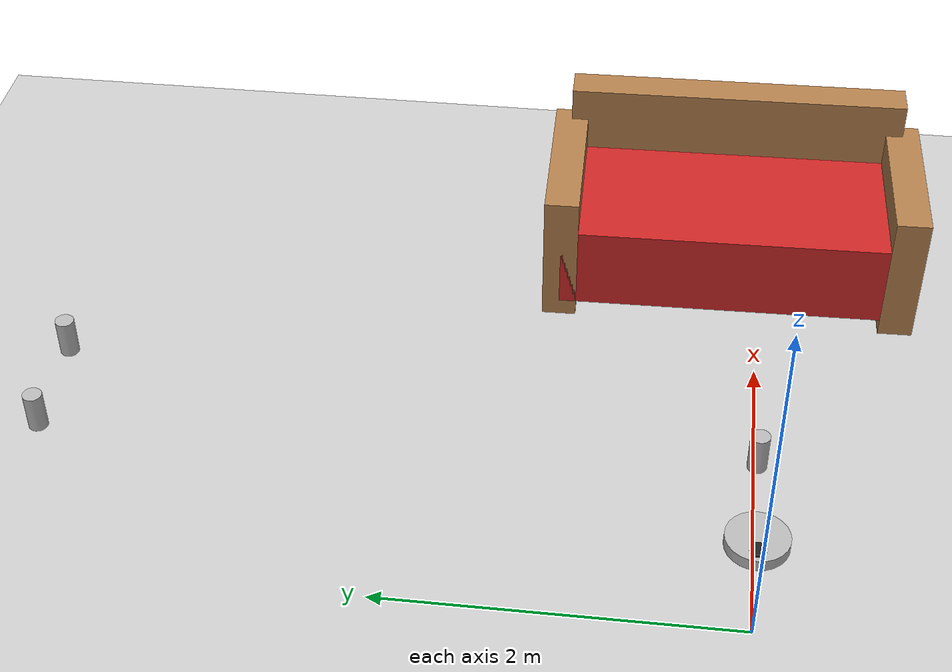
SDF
<sdf version="1.6">
 <world name="default">
  <model name="ground_plane">
   <static>1</static>
   <link name="link">
    <collision name="collision">
     <geometry><plane><normal>0 0 1</normal><size>100 100</size></plane></geometry>
     <surface><friction><ode><mu>100</mu><mu2>50</mu2></ode></friction></surface>
    </collision>
    <visual name="visual">
     <cast_shadows>0</cast_shadows>
     <geometry><plane><normal>0 0 1</normal><size>100 100</size></plane></geometry>
     <material>
      <script><uri>file://media/materials/scripts/gazebo.material</uri><name>Gazebo/Grey</name></script>
     </material>
    </visual>
   </link>
  </model>
  <model name="beer_clone">
   <link name="link">
    <pose>0 0 0.115 0 -0 0</pose>
    <inertial>
     <mass>0.39</mass>
     <inertia><ixx>0.00058</ixx><ixy>0</ixy><ixz>0</ixz><iyy>0.00058</iyy><iyz>0</iyz><izz>0.00019</izz></inertia>
    </inertial>
    <collision name="collision">
     <geometry><cylinder><radius>0.055</radius><length>0.23</length></cylinder></geometry>
    </collision>
    <visual name="visual">
     <geometry><cylinder><radius>0.055</radius><length>0.23</length></cylinder></geometry>
     <material>
      <script>
       <uri>model://beer/materials/scripts</uri>
       <uri>model://beer/materials/textures</uri>
       <name>Beer/Diffuse</name>
      </script>
     </material>
    </visual>
   </link>
   <pose>0.999981 0.0001 0.199992 3.1e-05 -3e-06 0.003682</pose>
  </model>
  <model name="beer_clone_1">
   <link name="link">
    <pose>0 0 0.115 0 -0 0</pose>
    <inertial>
     <mass>0.39</mass>
     <inertia><ixx>0.00058</ixx><ixy>0</ixy><ixz>0</ixz><iyy>0.00058</iyy><iyz>0</iyz><izz>0.00019</izz></inertia>
    </inertial>
    <collision name="collision">
     <geometry><cylinder><radius>0.055</radius><length>0.23</length></cylinder></geometry>
    </collision>
    <visual name="visual">
     <geometry><cylinder><radius>0.055</radius><length>0.23</length></cylinder></geometry>
     <material>
      <script>
       <uri>model://beer/materials/scripts</uri>
       <uri>model://beer/materials/textures</uri>
       <name>Beer/Diffuse</name>
      </script>
     </material>
    </visual>
   </link>
   <pose>0.858582 3.99802 0.199996 2.6e-05 0.000105 0.000698</pose>
  </model>
  <model name="beer_clone_2">
   <link name="link">
    <pose>0 0 0.115 0 -0 0</pose>
    <inertial>
     <mass>0.39</mass>
     <inertia><ixx>0.00058</ixx><ixy>0</ixy><ixz>0</ixz><iyy>0.00058</iyy><iyz>0</iyz><izz>0.00019</izz></inertia>
    </inertial>
    <collision name="collision">
     <geometry><cylinder><radius>0.055</radius><length>0.23</length></cylinder></geometry>
    </collision>
    <visual name="visual">
     <geometry><cylinder><radius>0.055</radius><length>0.23</length></cylinder></geometry>
     <material>
      <script>
       <uri>model://beer/materials/scripts</uri>
       <uri>model://beer/materials/textures</uri>
       <name>Beer/Diffuse</name>
      </script>
     </material>
    </visual>
   </link>
   <pose>1.49167 4.01205 0.200006 2.8e-05 0.000107 -5e-05</pose>
  </model>
  <model name="safa">
   <link name="link_0">
    <pose>0.125 0 -0.0625 0 -0 0</pose>
    <inertial>
     <mass>1</mass>
     <inertia>
      <ixx>0.166667</ixx>
      <ixy>0</ixy>
      <ixz>0</ixz>
      <iyy>0.166667</iyy>
      <iyz>0</iyz>
      <izz>0.166667</izz>
     </inertia>
    </inertial>
    <visual name="visual">
     <geometry><box><size>1 2 0.5</size></box></geometry>
     <material>
      <lighting>1</lighting>
      <script><uri>file://media/materials/scripts/gazebo.material</uri><name>Gazebo/Red</name></script>
      <ambient>0.7 0 0 1</ambient>
      <diffuse>0.7 0 0 1</diffuse>
      <specular>0.7 0 0 1</specular>
      <emissive>0 0 0 1</emissive>
      <shader type="vertex"><normal_map>__default__</normal_map></shader>
     </material>
    </visual>
    <collision name="collision">
     <geometry><box><size>1 2 0.5</size></box></geometry>
     <surface>
      <friction>
       <ode><mu>1</mu><mu2>1</mu2><fdir1>0 0 0</fdir1><slip1>0</slip1><slip2>0</slip2></ode>
       <torsional>
        <coefficient>1</coefficient>
        <patch_radius>0</patch_radius>
        <surface_radius>0</surface_radius>
        <use_patch_radius>1</use_patch_radius>
        <ode><slip>0</slip></ode>
       </torsional>
      </friction>
      <bounce><restitution_coefficient>0</restitution_coefficient><threshold>1e+06</threshold></bounce>
      <contact>
       <collide_without_contact>0</collide_without_contact>
       <collide_without_contact_bitmask>1</collide_without_contact_bitmask>
       <collide_bitmask>1</collide_bitmask>
       <ode>
        <soft_cfm>0</soft_cfm>
        <soft_erp>0.2</soft_erp>
        <kp>1e+13</kp>
        <kd>1</kd>
        <max_vel>0.01</max_vel>
        <min_depth>0</min_depth>
       </ode>
       <bullet>
        <split_impulse>1</split_impulse>
        <split_impulse_penetration_threshold>-0.01</split_impulse_penetration_threshold>
        <soft_cfm>0</soft_cfm>
        <soft_erp>0.2</soft_erp>
        <kp>1e+13</kp>
        <kd>1</kd>
       </bullet>
      </contact>
     </surface>
    </collision>
   </link>
   <link name="link_1">
    <pose>0.125 -1 -0.0125 0 -0 0</pose>
    <inertial>
     <mass>1</mass>
     <inertia>
      <ixx>0.166667</ixx>
      <ixy>0</ixy>
      <ixz>0</ixz>
      <iyy>0.166667</iyy>
      <iyz>0</iyz>
      <izz>0.166667</izz>
     </inertia>
    </inertial>
    <visual name="visual">
     <geometry><box><size>1 0.2 0.8</size></box></geometry>
     <material>
      <lighting>1</lighting>
      <script><uri>file://media/materials/scripts/gazebo.material</uri><name>Gazebo/Wood</name></script>
      <ambient>0.3 0.3 0.3 1</ambient>
      <diffuse>0.7 0.7 0.7 1</diffuse>
      <specular>0.01 0.01 0.01 1</specular>
      <emissive>0 0 0 1</emissive>
      <shader type="vertex"><normal_map>__default__</normal_map></shader>
     </material>
    </visual>
    <collision name="collision">
     <geometry><box><size>1 0.2 0.8</size></box></geometry>
     <surface>
      <friction>
       <ode><mu>1</mu><mu2>1</mu2><fdir1>0 0 0</fdir1><slip1>0</slip1><slip2>0</slip2></ode>
       <torsional>
        <coefficient>1</coefficient>
        <patch_radius>0</patch_radius>
        <surface_radius>0</surface_radius>
        <use_patch_radius>1</use_patch_radius>
        <ode><slip>0</slip></ode>
       </torsional>
      </friction>
      <bounce><restitution_coefficient>0</restitution_coefficient><threshold>1e+06</threshold></bounce>
      <contact>
       <collide_without_contact>0</collide_without_contact>
       <collide_without_contact_bitmask>1</collide_without_contact_bitmask>
       <collide_bitmask>1</collide_bitmask>
       <ode>
        <soft_cfm>0</soft_cfm>
        <soft_erp>0.2</soft_erp>
        <kp>1e+13</kp>
        <kd>1</kd>
        <max_vel>0.01</max_vel>
        <min_depth>0</min_depth>
       </ode>
       <bullet>
        <split_impulse>1</split_impulse>
        <split_impulse_penetration_threshold>-0.01</split_impulse_penetration_threshold>
        <soft_cfm>0</soft_cfm>
        <soft_erp>0.2</soft_erp>
        <kp>1e+13</kp>
        <kd>1</kd>
       </bullet>
      </contact>
     </surface>
    </collision>
   </link>
   <link name="link_1_clone">
    <pose>0.125 1 -0.0125 0 -0 0</pose>
    <inertial>
     <mass>1</mass>
     <inertia>
      <ixx>0.166667</ixx>
      <ixy>0</ixy>
      <ixz>0</ixz>
      <iyy>0.166667</iyy>
      <iyz>0</iyz>
      <izz>0.166667</izz>
     </inertia>
    </inertial>
    <visual name="visual">
     <geometry><box><size>1 0.2 0.8</size></box></geometry>
     <material>
      <lighting>1</lighting>
      <script><uri>file://media/materials/scripts/gazebo.material</uri><name>Gazebo/Wood</name></script>
      <ambient>0.3 0.3 0.3 1</ambient>
      <diffuse>0.7 0.7 0.7 1</diffuse>
      <specular>0.01 0.01 0.01 1</specular>
      <emissive>0 0 0 1</emissive>
      <shader type="vertex"><normal_map>__default__</normal_map></shader>
     </material>
    </visual>
    <collision name="collision">
     <geometry><box><size>1 0.2 0.8</size></box></geometry>
     <surface>
      <friction>
       <ode><mu>1</mu><mu2>1</mu2><fdir1>0 0 0</fdir1><slip1>0</slip1><slip2>0</slip2></ode>
       <torsional>
        <coefficient>1</coefficient>
        <patch_radius>0</patch_radius>
        <surface_radius>0</surface_radius>
        <use_patch_radius>1</use_patch_radius>
        <ode><slip>0</slip></ode>
       </torsional>
      </friction>
      <bounce><restitution_coefficient>0</restitution_coefficient><threshold>1e+06</threshold></bounce>
      <contact>
       <collide_without_contact>0</collide_without_contact>
       <collide_without_contact_bitmask>1</collide_without_contact_bitmask>
       <collide_bitmask>1</collide_bitmask>
       <ode>
        <soft_cfm>0</soft_cfm>
        <soft_erp>0.2</soft_erp>
        <kp>1e+13</kp>
        <kd>1</kd>
        <max_vel>0.01</max_vel>
        <min_depth>0</min_depth>
       </ode>
       <bullet>
        <split_impulse>1</split_impulse>
        <split_impulse_penetration_threshold>-0.01</split_impulse_penetration_threshold>
        <soft_cfm>0</soft_cfm>
        <soft_erp>0.2</soft_erp>
        <kp>1e+13</kp>
        <kd>1</kd>
       </bullet>
      </contact>
     </surface>
    </collision>
   </link>
   <link name="link_1_clone_0">
    <pose>-0.375 0 0.0875 0 -0 0</pose>
    <inertial>
     <mass>1</mass>
     <inertia>
      <ixx>0.166667</ixx>
      <ixy>0</ixy>
      <ixz>0</ixz>
      <iyy>0.166667</iyy>
      <iyz>0</iyz>
      <izz>0.166667</izz>
     </inertia>
    </inertial>
    <visual name="visual">
     <geometry><box><size>0.2 2 1</size></box></geometry>
     <material>
      <lighting>1</lighting>
      <script><uri>file://media/materials/scripts/gazebo.material</uri><name>Gazebo/Wood</name></script>
      <ambient>0.3 0.3 0.3 1</ambient>
      <diffuse>0.7 0.7 0.7 1</diffuse>
      <specular>0.01 0.01 0.01 1</specular>
      <emissive>0 0 0 1</emissive>
      <shader type="vertex"><normal_map>__default__</normal_map></shader>
     </material>
    </visual>
    <collision name="collision">
     <geometry><box><size>0.2 2 1</size></box></geometry>
     <surface>
      <friction>
       <ode><mu>1</mu><mu2>1</mu2><fdir1>0 0 0</fdir1><slip1>0</slip1><slip2>0</slip2></ode>
       <torsional>
        <coefficient>1</coefficient>
        <patch_radius>0</patch_radius>
        <surface_radius>0</surface_radius>
        <use_patch_radius>1</use_patch_radius>
        <ode><slip>0</slip></ode>
       </torsional>
      </friction>
      <bounce><restitution_coefficient>0</restitution_coefficient><threshold>1e+06</threshold></bounce>
      <contact>
       <collide_without_contact>0</collide_without_contact>
       <collide_without_contact_bitmask>1</collide_without_contact_bitmask>
       <collide_bitmask>1</collide_bitmask>
       <ode>
        <soft_cfm>0</soft_cfm>
        <soft_erp>0.2</soft_erp>
        <kp>1e+13</kp>
        <kd>1</kd>
        <max_vel>0.01</max_vel>
        <min_depth>0</min_depth>
       </ode>
       <bullet>
        <split_impulse>1</split_impulse>
        <split_impulse_penetration_threshold>-0.01</split_impulse_penetration_threshold>
        <soft_cfm>0</soft_cfm>
        <soft_erp>0.2</soft_erp>
        <kp>1e+13</kp>
        <kd>1</kd>
       </bullet>
      </contact>
     </surface>
    </collision>
   </link>
   <joint name="link_0_JOINT_0" type="fixed">
    <parent>link_0</parent>
    <child>link_1</child>
    <physics>
     <ode><limit><cfm>0</cfm><erp>0.2</erp></limit><suspension><cfm>0</cfm><erp>0.2</erp></suspension></ode>
    </physics>
   </joint>
   <joint name="link_0_JOINT_1" type="fixed">
    <parent>link_0</parent>
    <child>link_1_clone</child>
    <physics>
     <ode><limit><cfm>0</cfm><erp>0.2</erp></limit><suspension><cfm>0</cfm><erp>0.2</erp></suspension></ode>
    </physics>
   </joint>
   <joint name="link_0_JOINT_2" type="fixed">
    <parent>link_0</parent>
    <child>link_1_clone_0</child>
    <physics>
     <ode><limit><cfm>0</cfm><erp>0.2</erp></limit><suspension><cfm>0</cfm><erp>0.2</erp></suspension></ode>
    </physics>
   </joint>
   <static>0</static>
   <pose>2.81574 0.204135 0.6125 0 0 -3.12306</pose>
  </model>
  <model name="cleanpack">
   <pose>0.4 0 0.2 0 0 0</pose>
   <link name="base">
    <visual name="base_visual">
     <pose>0 0 0.055 0 0 0</pose>
     <geometry><cylinder><radius>0.175</radius><length>0.07</length></cylinder></geometry>
    </visual>
    <collision name="base_collision">
     <pose>0 0 0.055 0 0 0</pose>
     <geometry><cylinder><radius>0.175</radius><length>0.07</length></cylinder></geometry>
    </collision>
    <sensor type="contact" name="bady_contact">
     <always_on>true</always_on>
     <update_rate>20</update_rate>
     <contact><collision>base_collision</collision></contact>
     <plugin name="body_contact_controller" filename="libcleanpack_collider.so">
      <mode>body</mode>
      <collider_radius>0.175</collider_radius>
     </plugin>
    </sensor>
    <visual name="caster_visual">
     <pose>0.1 0 0.02 -1.57 0 0</pose>
     <geometry><sphere><radius>0.02</radius></sphere></geometry>
     <material><script><name>Gazebo/Black</name></script></material>
    </visual>
    <collision name="caster_collision">
     <pose>0.1 0 0.02 -1.57 0 0</pose>
     <geometry><sphere><radius>0.02</radius></sphere></geometry>
     <surface>
      <friction><ode><mu>0.0</mu><mu2>0.0</mu2><fdir1>0 0 0</fdir1><slip1>0</slip1><slip2>0</slip2></ode></friction>
     </surface>
    </collision>
    <visual name="back_caster_visual">
     <pose>-0.1 0 0.02 -1.57 0 0</pose>
     <geometry><sphere><radius>0.018</radius></sphere></geometry>
     <material><script><name>Gazebo/Black</name></script></material>
    </visual>
    <collision name="back_caster_collision">
     <pose>-0.1 0 0.02 -1.57 0 0</pose>
     <geometry><sphere><radius>0.018</radius></sphere></geometry>
     <surface>
      <friction>
       <ode><mu>0.0</mu><mu2>0.0</mu2><fdir1>0 0 0</fdir1><slip1>0.0</slip1><slip2>0.0</slip2></ode>
      </friction>
     </surface>
    </collision>
    <inertial>
     <pose>0.05 0 0.02 0 0 0</pose>
     <mass>0.8</mass>
     <inertia>
      <ixx>0.001</ixx>
      <ixy>0.000</ixy>
      <ixz>0.000</ixz>
      <iyy>0.001</iyy>
      <iyz>0.000</iyz>
      <izz>0.001</izz>
     </inertia>
    </inertial>
   </link>
   <link name="lidar">
    <sensor name="lidar83373" type="ray">
     <ray>
      <scan>
       <horizontal>
        <samples>360</samples>
        <resolution>1</resolution>
        <min_angle>0.0</min_angle>
        <max_angle>-6.28319</max_angle>
       </horizontal>
       <vertical>
        <samples>1</samples>
        <resolution>1</resolution>
        <min_angle>0.0</min_angle>
        <max_angle>1.0</max_angle>
       </vertical>
      </scan>
      <range><min>0.06</min><max>8.0</max><resolution>0.001</resolution></range>
      <noise><type>gaussian</type><mean>0.0</mean><stddev>0.005</stddev></noise>
     </ray>
     <always_on>true</always_on>
     <pose>-0.105 0 0.1 0 0 -1.2217</pose>
     <visualize>true</visualize>
     <update_rate>6</update_rate>
     <plugin name="cleanpack_lidar83373" filename="libcleanpack_lidar.so"/>
    </sensor>
    <gravity>false</gravity>
    <visual name="lidar_visual">
     <pose>-0.105 0 0.095 0 0 0</pose>
     <geometry><cylinder><radius>0.045</radius><length>0.0315</length></cylinder></geometry>
     <material><script><name>Gazebo/Black</name></script></material>
    </visual>
    <collision name="lidar_collision">
     <pose>-0.105 0 0.095 0 0 0</pose>
     <geometry><cylinder><radius>0.045</radius><length>0.0315</length></cylinder></geometry>
    </collision>
    <inertial>
     <mass>0.0001</mass>
     <inertia>
      <ixx>0.001</ixx>
      <ixy>0.000</ixy>
      <ixz>0.000</ixz>
      <iyy>0.001</iyy>
      <iyz>0.000</iyz>
      <izz>0.001</izz>
     </inertia>
    </inertial>
   </link>
   <joint name="lidar_joint" type="fixed">
    <parent>base</parent>
    <child>lidar</child>
    <pose>-0.105 0 0.095 0 0 0</pose>
    <axis><xyz>0 0 0</xyz></axis>
   </joint>
   <link name="left_wheel">
    <inertial>
     <pose>0.0 0.12 0.035 -1.57 0 0</pose>
     <inertia>
      <ixx>0.001</ixx>
      <ixy>0.000</ixy>
      <ixz>0.000</ixz>
      <iyy>0.001</iyy>
      <iyz>0.000</iyz>
      <izz>0.001</izz>
     </inertia>
     <mass>0.1</mass>
    </inertial>
    <collision name="left_wheel_collision">
     <pose>0.0 0.12 0.035 -1.57 0 0</pose>
     <geometry><cylinder><radius>0.035</radius><length>0.018</length></cylinder></geometry>
     <surface>
      <friction>
       <ode><mu>100000.0</mu><mu2>100000.0</mu2><fdir1>0 0 0</fdir1><slip1>0.0</slip1><slip2>0.0</slip2></ode>
      </friction>
     </surface>
    </collision>
    <visual name="left_wheel_visual">
     <pose>0.0 0.12 0.035 -1.57 0 0</pose>
     <geometry><cylinder><radius>0.035</radius><length>0.018</length></cylinder></geometry>
     <material><script><name>Gazebo/Black</name></script></material>
    </visual>
   </link>
   <link name="right_wheel">
    <inertial>
     <pose>0.0 -0.12 0.035 -1.57 0 0</pose>
     <inertia>
      <ixx>0.001</ixx>
      <ixy>0.000</ixy>
      <ixz>0.000</ixz>
      <iyy>0.001</iyy>
      <iyz>0.000</iyz>
      <izz>0.001</izz>
     </inertia>
     <mass>0.1</mass>
    </inertial>
    <collision name="right_wheel_collision">
     <pose>0.0 -0.12 0.035 -1.57 0 0</pose>
     <geometry><cylinder><radius>0.035</radius><length>0.018</length></cylinder></geometry>
     <surface>
      <friction>
       <ode><mu>100000.0</mu><mu2>100000.0</mu2><fdir1>0 0 0</fdir1><slip1>0.0</slip1><slip2>0.0</slip2></ode>
      </friction>
     </surface>
    </collision>
    <visual name="right_wheel_visual">
     <pose>0.0 -0.12 0.035 -1.57 0 0</pose>
     <geometry><cylinder><radius>0.035</radius><length>0.018</length></cylinder></geometry>
     <material><script><name>Gazebo/Black</name></script></material>
    </visual>
   </link>
   <joint name="left_wheel_joint" type="revolute">
    <parent>base</parent>
    <child>left_wheel</child>
    <pose>0.0 0.12 0.035 -1.57 0 0</pose>
    <axis><xyz>0 0 1</xyz></axis>
   </joint>
   <joint name="right_wheel_joint" type="revolute">
    <parent>base</parent>
    <child>right_wheel</child>
    <pose>0.0 -0.12 0.035 -1.57 0 0</pose>
    <axis><xyz>0 0 1</xyz></axis>
   </joint>
   <plugin name="model_push" filename="libcleanpack_diff_driver.so"/>
  </model>
 </world>
</sdf>
